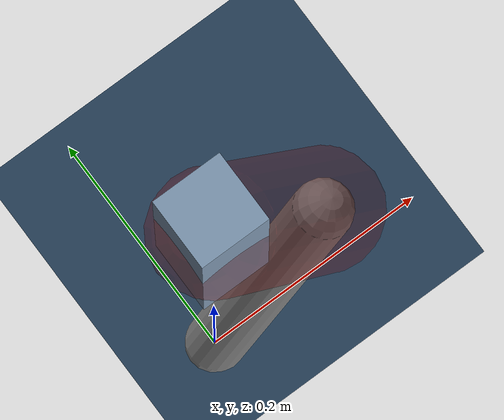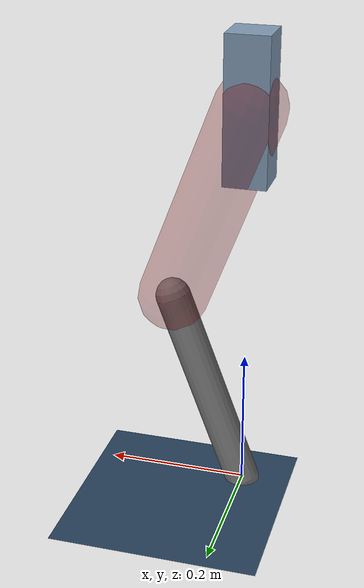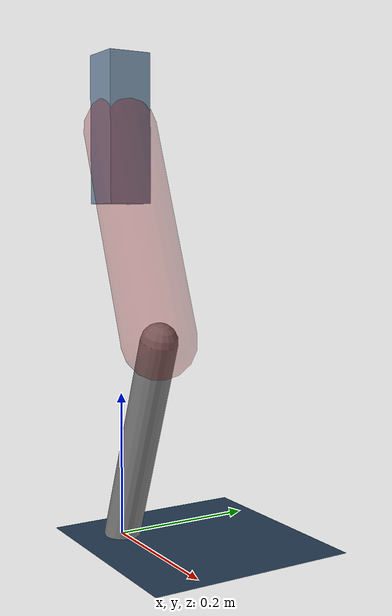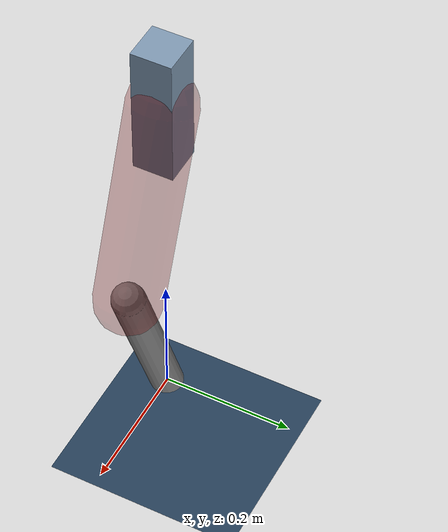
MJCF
<mujoco model="Hopper2D">
	<compiler inertiafromgeom="true" angle="radian" />
	<option timestep="0.001" integrator="implicit" cone="elliptic" solver="Newton" tolerance="1e-10" />

	<default>
		<geom contype="1" conaffinity="1" condim="3" friction="2 0.005 0.0001" solref="0.005 1" />
		<joint limited="true" damping="0.1" />
	</default>

	<asset>
		<texture name="skybox" type="skybox" builtin="gradient" rgb1=".4 .6 .8" rgb2="0 0 0" width="800" height="800" />
		<texture name="grid" type="2d" builtin="checker" rgb1=".1 .2 .3" rgb2=".2 .3 .4" width="300" height="300" mark="edge" markrgb=".2 .3 .4" />
		<material name="ground" texture="grid" texrepeat="1 1" texuniform="true" reflectance="0.1" />
		<material name="leg" rgba="0.5 0.6 0.7 1" />
	</asset>

	<worldbody>

		<geom name="floor" type="plane" size="5 5 0.25" material="ground" />

		<light directional="false" diffuse="0.8 0.8 0.8" specular="0.3 0.3 0.3" pos="0 0 2" dir="0 0 -1" />
		<light mode="targetbodycom" target="base" directional="false" diffuse="0.8 0.8 0.8" specular="0.3 0.3 0.3" pos="0 0 2" dir="0 0 -1" />

		<camera name="fixed" pos="0 -2 1" xyaxes="1 0 0 0 0 1" />
		<camera name="tracking" mode="trackcom" pos="0 -3 1" />

		<body name="root" pos="0 0 0.5621123107949091">
			<joint name="slide_x" type="slide" axis="1 0 0" range="-100 100" />
			<joint name="slide_z" type="slide" axis="0 0 1" range="0 10" />

			<body name="base" pos="0 0 0">
				<geom name="torso" type="box" size="0.03 0.03 0.1" mass="3.8499999999999996" material="leg" />

				<body name="link1" pos="0 0 0" euler="0 1.208707832818544 0">
					<joint type="hinge" axis="0 -1 0" pos="0 0 0" name="hinge1" limited="true" range="-3.14 3.14" stiffness="0" damping="0.1" />
					<geom name="thigh" type="capsule" fromto="0 0 0 0.297751060128733 0 0" size="0.05" rgba="0.5 0 0 0.3" mass="0.982627862347579" />

					<body name="link2" pos="0.297751060128733 0 0" euler="0 0.7180635336423424 0">
						<joint type="hinge" axis="0 -1 0" pos="0 0 0" name="hinge2" limited="true" range="-3.14 3.14" stiffness="0" damping="0.1" />
						<geom name="shank" type="capsule" fromto="0 0 0 0.302641151908534 0 0" size="0.025" mass="0.4856129215268272" />

					</body>
				</body>
			</body>
		</body>
	</worldbody>

	<actuator>
		<motor name="torque1" joint="hinge1" ctrlrange="-163.13208384513692 163.13208384513692" ctrllimited="true" gear="1" />
		<motor name="torque2" joint="hinge2" ctrlrange="-145.58045301101896 145.58045301101896" ctrllimited="true" gear="1" />
	</actuator>
</mujoco>
